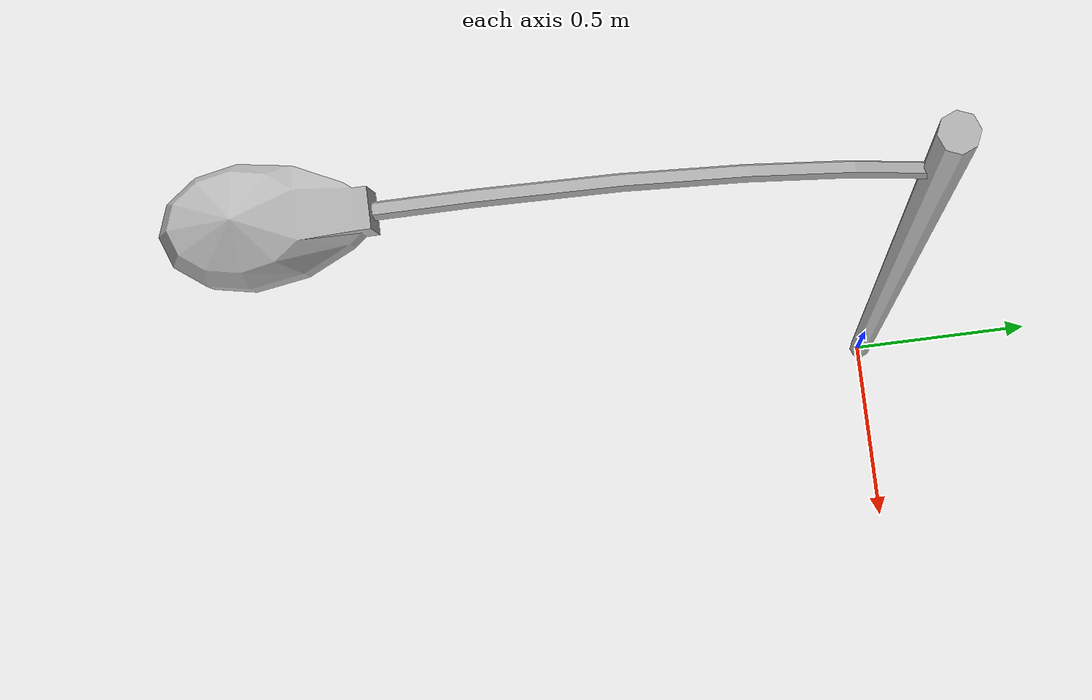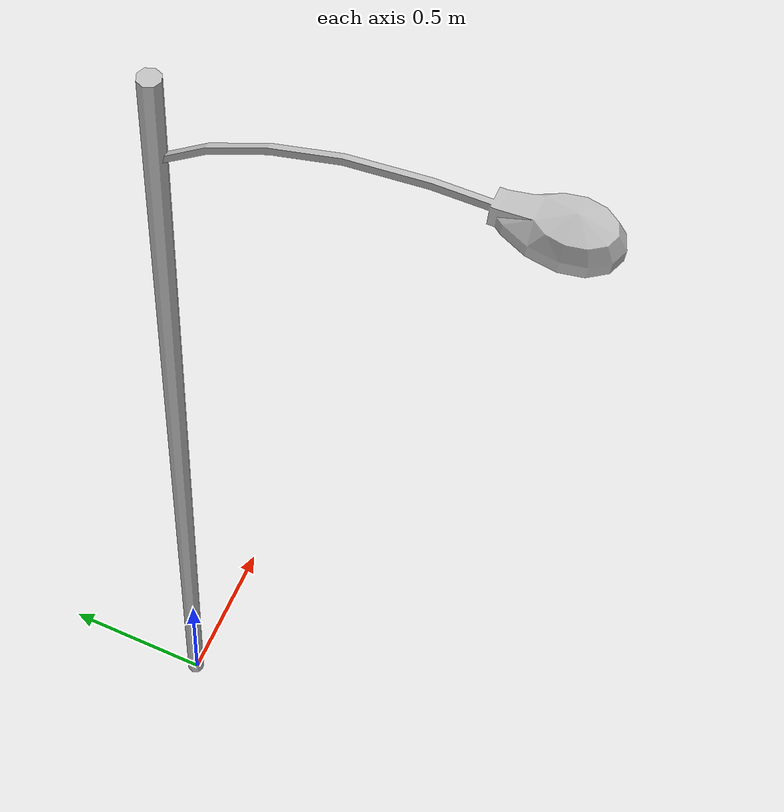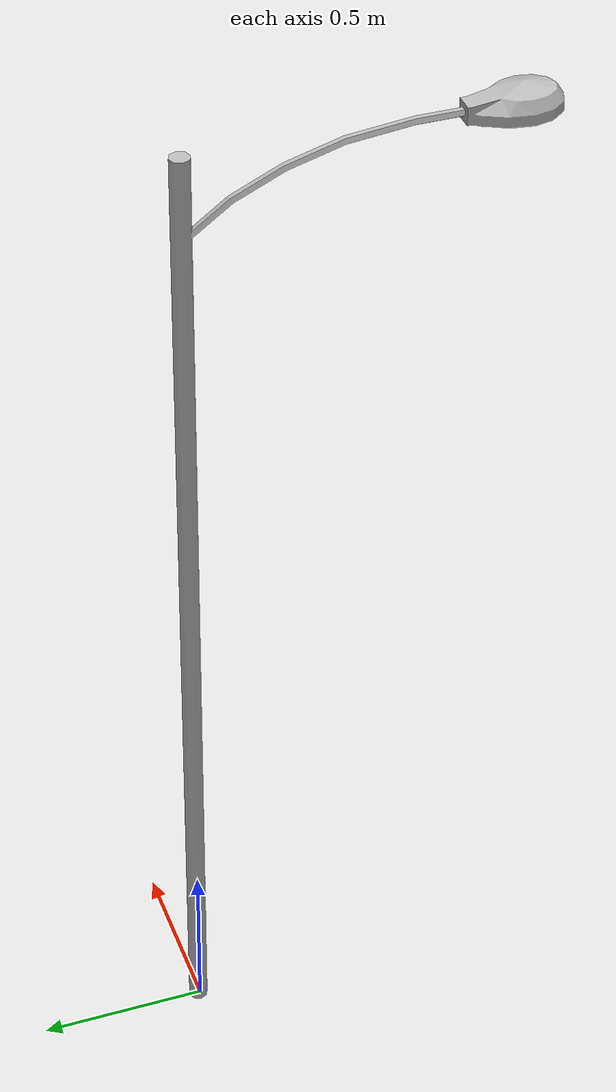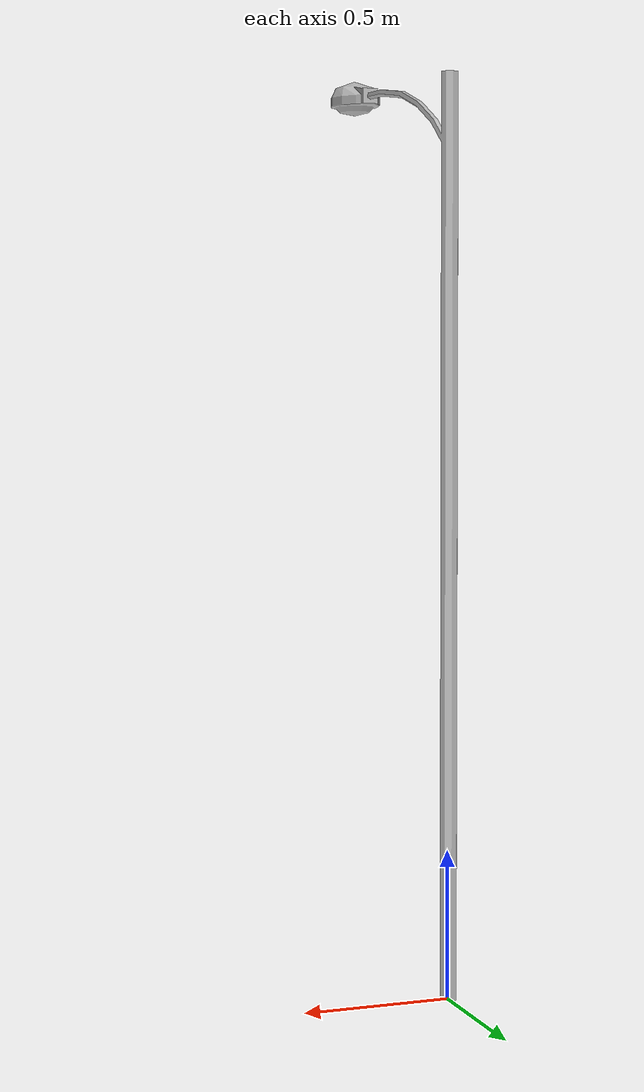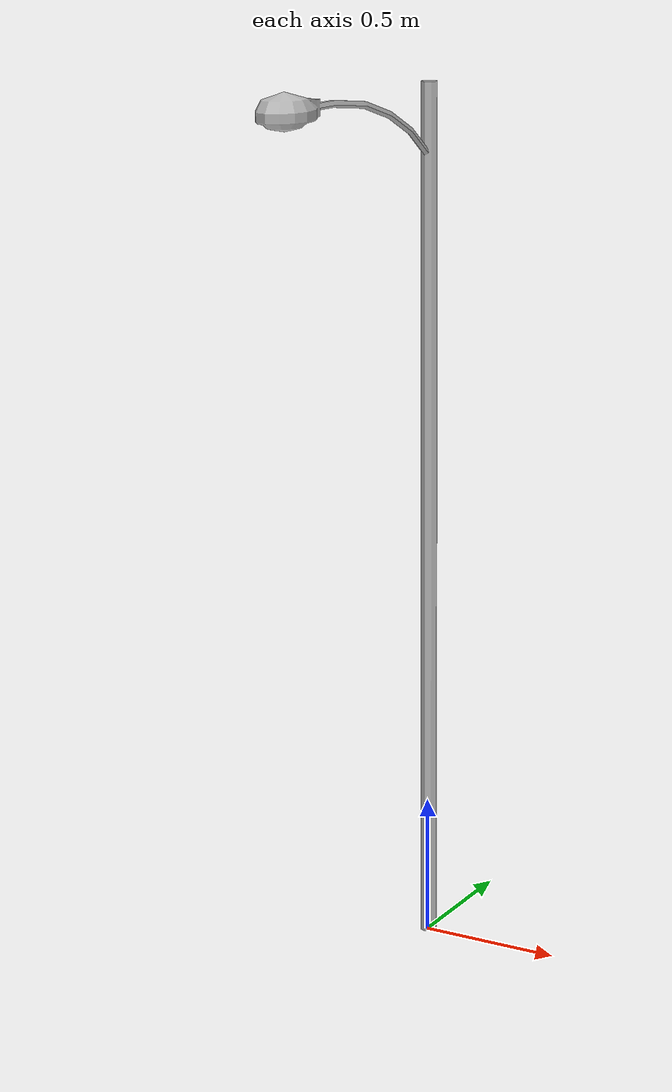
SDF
<?xml version="1.0"?>
<sdf version="1.4">
  <model name="lamp_post">
    <static>true</static>
    <link name="link">
      <collision name="collision">
        <geometry>
          <mesh>
            <uri>model://lamp_post/meshes/lamp_post.dae</uri>
          </mesh>
        </geometry>
      </collision>
      <visual name="visual">
        <geometry>
          <mesh>
            <uri>model://lamp_post/meshes/lamp_post.dae</uri>
          </mesh>
        </geometry>
      </visual>
    </link>
  </model>
</sdf>
